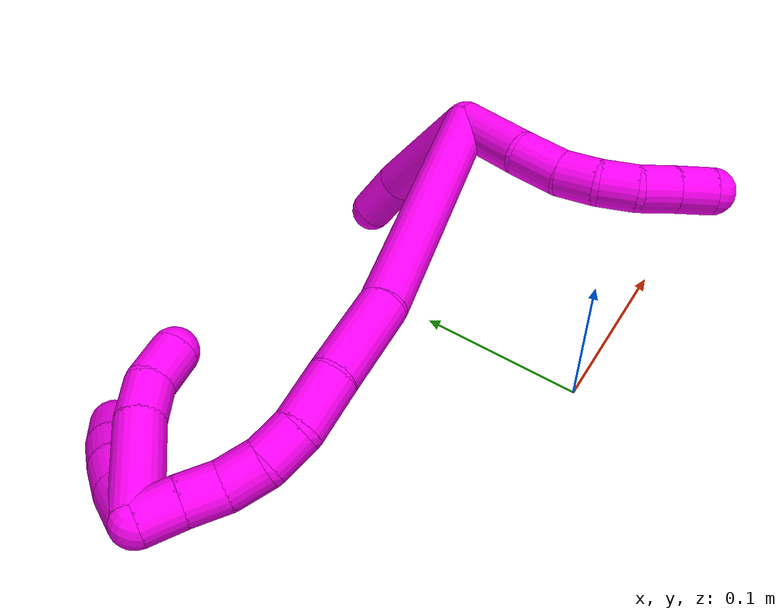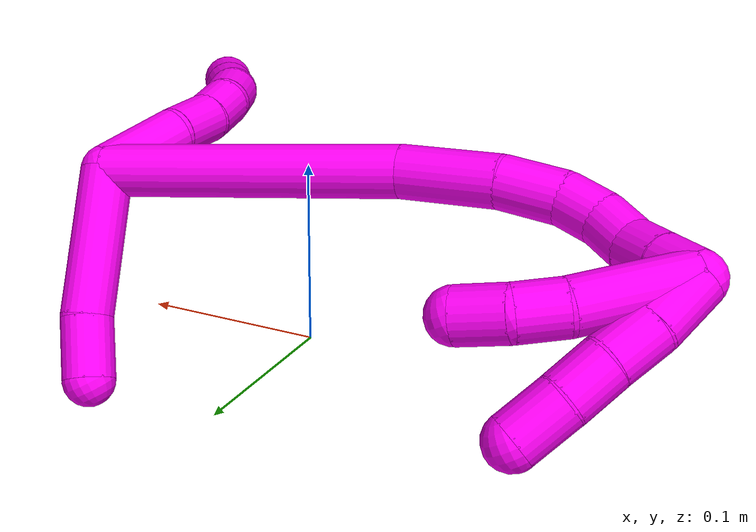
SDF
<sdf version="1.7">
 <world name="default">
  <model name="10">
   <static>0</static>
   <link name="10">
    <collision name="collision-cylinder-e_1_2_8">
     <pose>-0.001905 -0.021486 0.001233 1.51347 -0.088296 -0.083379</pose>
     <geometry><cylinder><radius>0.0125</radius><length>0.043212</length></cylinder></geometry>
     <surface>
      <friction><ode><mu>1.16</mu><mu2>1.16</mu2><slip1>0</slip1><slip2>0</slip2></ode></friction>
      <contact><ode><kp>1e+06</kp><kd>1</kd><max_vel>0</max_vel><min_depth>0.001</min_depth></ode></contact>
     </surface>
    </collision>
    <visual name="visual-cylinder-e_1_2_8">
     <pose>-0.001905 -0.021486 0.001233 1.51347 -0.088296 -0.083379</pose>
     <geometry><cylinder><radius>0.0125</radius><length>0.043212</length></cylinder></geometry>
     <material><ambient>1 0 0.964706 1</ambient></material>
    </visual>
    <collision name="collision-cylinder-e_2_8_9">
     <pose>-0.001815 -0.055603 0.002499 1.56824 0.156663 0.156265</pose>
     <geometry><cylinder><radius>0.0125</radius><length>0.025575</length></cylinder></geometry>
     <surface>
      <friction><ode><mu>1.16</mu><mu2>1.16</mu2><slip1>0</slip1><slip2>0</slip2></ode></friction>
      <contact><ode><kp>1e+06</kp><kd>1</kd><max_vel>0</max_vel><min_depth>0.001</min_depth></ode></contact>
     </surface>
    </collision>
    <visual name="visual-cylinder-e_2_8_9">
     <pose>-0.001815 -0.055603 0.002499 1.56824 0.156663 0.156265</pose>
     <geometry><cylinder><radius>0.0125</radius><length>0.025575</length></cylinder></geometry>
     <material><ambient>1 0 0.964706 1</ambient></material>
    </visual>
    <collision name="collision-cylinder-e_3_9_10">
     <pose>0.002886 -0.078226 0.004364 1.38934 0.260347 0.2173</pose>
     <geometry><cylinder><radius>0.0125</radius><length>0.021026</length></cylinder></geometry>
     <surface>
      <friction><ode><mu>1.16</mu><mu2>1.16</mu2><slip1>0</slip1><slip2>0</slip2></ode></friction>
      <contact><ode><kp>1e+06</kp><kd>1</kd><max_vel>0</max_vel><min_depth>0.001</min_depth></ode></contact>
     </surface>
    </collision>
    <visual name="visual-cylinder-e_3_9_10">
     <pose>0.002886 -0.078226 0.004364 1.38934 0.260347 0.2173</pose>
     <geometry><cylinder><radius>0.0125</radius><length>0.021026</length></cylinder></geometry>
     <material><ambient>1 0 0.964706 1</ambient></material>
    </visual>
    <collision name="collision-cylinder-e_4_10_11">
     <pose>0.010838 -0.096562 0.00808 1.34894 0.550088 0.44383</pose>
     <geometry><cylinder><radius>0.0125</radius><length>0.020067</length></cylinder></geometry>
     <surface>
      <friction><ode><mu>1.16</mu><mu2>1.16</mu2><slip1>0</slip1><slip2>0</slip2></ode></friction>
      <contact><ode><kp>1e+06</kp><kd>1</kd><max_vel>0</max_vel><min_depth>0.001</min_depth></ode></contact>
     </surface>
    </collision>
    <visual name="visual-cylinder-e_4_10_11">
     <pose>0.010838 -0.096562 0.00808 1.34894 0.550088 0.44383</pose>
     <geometry><cylinder><radius>0.0125</radius><length>0.020067</length></cylinder></geometry>
     <material><ambient>1 0 0.964706 1</ambient></material>
    </visual>
    <collision name="collision-cylinder-e_5_11_12">
     <pose>0.023719 -0.111057 0.011997 1.25122 0.867161 0.64551</pose>
     <geometry><cylinder><radius>0.0125</radius><length>0.020028</length></cylinder></geometry>
     <surface>
      <friction><ode><mu>1.16</mu><mu2>1.16</mu2><slip1>0</slip1><slip2>0</slip2></ode></friction>
      <contact><ode><kp>1e+06</kp><kd>1</kd><max_vel>0</max_vel><min_depth>0.001</min_depth></ode></contact>
     </surface>
    </collision>
    <visual name="visual-cylinder-e_5_11_12">
     <pose>0.023719 -0.111057 0.011997 1.25122 0.867161 0.64551</pose>
     <geometry><cylinder><radius>0.0125</radius><length>0.020028</length></cylinder></geometry>
     <material><ambient>1 0 0.964706 1</ambient></material>
    </visual>
    <collision name="collision-cylinder-e_6_12_6">
     <pose>0.038721 -0.123759 0.015962 1.28442 0.823235 0.631246</pose>
     <geometry><cylinder><radius>0.0125</radius><length>0.020092</length></cylinder></geometry>
     <surface>
      <friction><ode><mu>1.16</mu><mu2>1.16</mu2><slip1>0</slip1><slip2>0</slip2></ode></friction>
      <contact><ode><kp>1e+06</kp><kd>1</kd><max_vel>0</max_vel><min_depth>0.001</min_depth></ode></contact>
     </surface>
    </collision>
    <visual name="visual-cylinder-e_6_12_6">
     <pose>0.038721 -0.123759 0.015962 1.28442 0.823235 0.631246</pose>
     <geometry><cylinder><radius>0.0125</radius><length>0.020092</length></cylinder></geometry>
     <material><ambient>1 0 0.964706 1</ambient></material>
    </visual>
    <collision name="collision-cylinder-e_1_2_13">
     <pose>0.004197 0.020351 -0.028628 -2.52361 0.118925 -0.368758</pose>
     <geometry><cylinder><radius>0.0125</radius><length>0.070748</length></cylinder></geometry>
     <surface>
      <friction><ode><mu>1.16</mu><mu2>1.16</mu2><slip1>0</slip1><slip2>0</slip2></ode></friction>
      <contact><ode><kp>1e+06</kp><kd>1</kd><max_vel>0</max_vel><min_depth>0.001</min_depth></ode></contact>
     </surface>
    </collision>
    <visual name="visual-cylinder-e_1_2_13">
     <pose>0.004197 0.020351 -0.028628 -2.52361 0.118925 -0.368758</pose>
     <geometry><cylinder><radius>0.0125</radius><length>0.070748</length></cylinder></geometry>
     <material><ambient>1 0 0.964706 1</ambient></material>
    </visual>
    <collision name="collision-cylinder-e_2_13_5">
     <pose>0.008798 0.047455 -0.070223 -2.66147 0.027631 -0.112767</pose>
     <geometry><cylinder><radius>0.0125</radius><length>0.029252</length></cylinder></geometry>
     <surface>
      <friction><ode><mu>1.16</mu><mu2>1.16</mu2><slip1>0</slip1><slip2>0</slip2></ode></friction>
      <contact><ode><kp>1e+06</kp><kd>1</kd><max_vel>0</max_vel><min_depth>0.001</min_depth></ode></contact>
     </surface>
    </collision>
    <visual name="visual-cylinder-e_2_13_5">
     <pose>0.008798 0.047455 -0.070223 -2.66147 0.027631 -0.112767</pose>
     <geometry><cylinder><radius>0.0125</radius><length>0.029252</length></cylinder></geometry>
     <material><ambient>1 0 0.964706 1</ambient></material>
    </visual>
    <collision name="collision-cylinder-e_1_2_14">
     <pose>-0.05606 -0.033025 -0.029202 2.29483 -0.90442 -1.64583</pose>
     <geometry><cylinder><radius>0.0125</radius><length>0.142635</length></cylinder></geometry>
     <surface>
      <friction><ode><mu>1.16</mu><mu2>1.16</mu2><slip1>0</slip1><slip2>0</slip2></ode></friction>
      <contact><ode><kp>1e+06</kp><kd>1</kd><max_vel>0</max_vel><min_depth>0.001</min_depth></ode></contact>
     </surface>
    </collision>
    <visual name="visual-cylinder-e_1_2_14">
     <pose>-0.05606 -0.033025 -0.029202 2.29483 -0.90442 -1.64583</pose>
     <geometry><cylinder><radius>0.0125</radius><length>0.142635</length></cylinder></geometry>
     <material><ambient>1 0 0.964706 1</ambient></material>
    </visual>
    <collision name="collision-cylinder-e_2_14_15">
     <pose>-0.131743 -0.073185 -0.069311 2.56235 -0.984501 -2.12721</pose>
     <geometry><cylinder><radius>0.0125</radius><length>0.047114</length></cylinder></geometry>
     <surface>
      <friction><ode><mu>1.16</mu><mu2>1.16</mu2><slip1>0</slip1><slip2>0</slip2></ode></friction>
      <contact><ode><kp>1e+06</kp><kd>1</kd><max_vel>0</max_vel><min_depth>0.001</min_depth></ode></contact>
     </surface>
    </collision>
    <visual name="visual-cylinder-e_2_14_15">
     <pose>-0.131743 -0.073185 -0.069311 2.56235 -0.984501 -2.12721</pose>
     <geometry><cylinder><radius>0.0125</radius><length>0.047114</length></cylinder></geometry>
     <material><ambient>1 0 0.964706 1</ambient></material>
    </visual>
    <collision name="collision-cylinder-e_3_15_16">
     <pose>-0.162761 -0.084098 -0.088931 2.73238 -0.876008 -2.30745</pose>
     <geometry><cylinder><radius>0.0125</radius><length>0.029667</length></cylinder></geometry>
     <surface>
      <friction><ode><mu>1.16</mu><mu2>1.16</mu2><slip1>0</slip1><slip2>0</slip2></ode></friction>
      <contact><ode><kp>1e+06</kp><kd>1</kd><max_vel>0</max_vel><min_depth>0.001</min_depth></ode></contact>
     </surface>
    </collision>
    <visual name="visual-cylinder-e_3_15_16">
     <pose>-0.162761 -0.084098 -0.088931 2.73238 -0.876008 -2.30745</pose>
     <geometry><cylinder><radius>0.0125</radius><length>0.029667</length></cylinder></geometry>
     <material><ambient>1 0 0.964706 1</ambient></material>
    </visual>
    <collision name="collision-cylinder-e_4_16_17">
     <pose>-0.181612 -0.087536 -0.104501 -3.09197 -0.826587 3.02855</pose>
     <geometry><cylinder><radius>0.0125</radius><length>0.02027</length></cylinder></geometry>
     <surface>
      <friction><ode><mu>1.16</mu><mu2>1.16</mu2><slip1>0</slip1><slip2>0</slip2></ode></friction>
      <contact><ode><kp>1e+06</kp><kd>1</kd><max_vel>0</max_vel><min_depth>0.001</min_depth></ode></contact>
     </surface>
    </collision>
    <visual name="visual-cylinder-e_4_16_17">
     <pose>-0.181612 -0.087536 -0.104501 -3.09197 -0.826587 3.02855</pose>
     <geometry><cylinder><radius>0.0125</radius><length>0.02027</length></cylinder></geometry>
     <material><ambient>1 0 0.964706 1</ambient></material>
    </visual>
    <collision name="collision-cylinder-e_5_17_18">
     <pose>-0.19604 -0.083918 -0.117975 -2.6816 -0.756747 2.07703</pose>
     <geometry><cylinder><radius>0.0125</radius><length>0.020312</length></cylinder></geometry>
     <surface>
      <friction><ode><mu>1.16</mu><mu2>1.16</mu2><slip1>0</slip1><slip2>0</slip2></ode></friction>
      <contact><ode><kp>1e+06</kp><kd>1</kd><max_vel>0</max_vel><min_depth>0.001</min_depth></ode></contact>
     </surface>
    </collision>
    <visual name="visual-cylinder-e_5_17_18">
     <pose>-0.19604 -0.083918 -0.117975 -2.6816 -0.756747 2.07703</pose>
     <geometry><cylinder><radius>0.0125</radius><length>0.020312</length></cylinder></geometry>
     <material><ambient>1 0 0.964706 1</ambient></material>
    </visual>
    <collision name="collision-cylinder-e_6_18_19">
     <pose>-0.211429 -0.077035 -0.128613 -2.41093 -1.00034 1.9203</pose>
     <geometry><cylinder><radius>0.0125</radius><length>0.02</length></cylinder></geometry>
     <surface>
      <friction><ode><mu>1.16</mu><mu2>1.16</mu2><slip1>0</slip1><slip2>0</slip2></ode></friction>
      <contact><ode><kp>1e+06</kp><kd>1</kd><max_vel>0</max_vel><min_depth>0.001</min_depth></ode></contact>
     </surface>
    </collision>
    <visual name="visual-cylinder-e_6_18_19">
     <pose>-0.211429 -0.077035 -0.128613 -2.41093 -1.00034 1.9203</pose>
     <geometry><cylinder><radius>0.0125</radius><length>0.02</length></cylinder></geometry>
     <material><ambient>1 0 0.964706 1</ambient></material>
    </visual>
    <collision name="collision-cylinder-e_7_19_1">
     <pose>-0.228263 -0.070295 -0.137032 -2.52193 -1.0003 2.08176</pose>
     <geometry><cylinder><radius>0.0125</radius><length>0.020002</length></cylinder></geometry>
     <surface>
      <friction><ode><mu>1.16</mu><mu2>1.16</mu2><slip1>0</slip1><slip2>0</slip2></ode></friction>
      <contact><ode><kp>1e+06</kp><kd>1</kd><max_vel>0</max_vel><min_depth>0.001</min_depth></ode></contact>
     </surface>
    </collision>
    <visual name="visual-cylinder-e_7_19_1">
     <pose>-0.228263 -0.070295 -0.137032 -2.52193 -1.0003 2.08176</pose>
     <geometry><cylinder><radius>0.0125</radius><length>0.020002</length></cylinder></geometry>
     <material><ambient>1 0 0.964706 1</ambient></material>
    </visual>
    <collision name="collision-cylinder-e_1_1_20">
     <pose>-0.222063 -0.045248 -0.134521 -1.26539 0.566661 -0.420675</pose>
     <geometry><cylinder><radius>0.0125</radius><length>0.054459</length></cylinder></geometry>
     <surface>
      <friction><ode><mu>1.16</mu><mu2>1.16</mu2><slip1>0</slip1><slip2>0</slip2></ode></friction>
      <contact><ode><kp>1e+06</kp><kd>1</kd><max_vel>0</max_vel><min_depth>0.001</min_depth></ode></contact>
     </surface>
    </collision>
    <visual name="visual-cylinder-e_1_1_20">
     <pose>-0.222063 -0.045248 -0.134521 -1.26539 0.566661 -0.420675</pose>
     <geometry><cylinder><radius>0.0125</radius><length>0.054459</length></cylinder></geometry>
     <material><ambient>1 0 0.964706 1</ambient></material>
    </visual>
    <collision name="collision-cylinder-e_2_20_21">
     <pose>-0.200303 -0.015786 -0.123956 -1.11981 0.705196 -0.453379</pose>
     <geometry><cylinder><radius>0.0125</radius><length>0.022039</length></cylinder></geometry>
     <surface>
      <friction><ode><mu>1.16</mu><mu2>1.16</mu2><slip1>0</slip1><slip2>0</slip2></ode></friction>
      <contact><ode><kp>1e+06</kp><kd>1</kd><max_vel>0</max_vel><min_depth>0.001</min_depth></ode></contact>
     </surface>
    </collision>
    <visual name="visual-cylinder-e_2_20_21">
     <pose>-0.200303 -0.015786 -0.123956 -1.11981 0.705196 -0.453379</pose>
     <geometry><cylinder><radius>0.0125</radius><length>0.022039</length></cylinder></geometry>
     <material><ambient>1 0 0.964706 1</ambient></material>
    </visual>
    <collision name="collision-cylinder-e_3_21_4">
     <pose>-0.183226 -0.003311 -0.116403 -0.901294 1.00724 -0.521096</pose>
     <geometry><cylinder><radius>0.0125</radius><length>0.023502</length></cylinder></geometry>
     <surface>
      <friction><ode><mu>1.16</mu><mu2>1.16</mu2><slip1>0</slip1><slip2>0</slip2></ode></friction>
      <contact><ode><kp>1e+06</kp><kd>1</kd><max_vel>0</max_vel><min_depth>0.001</min_depth></ode></contact>
     </surface>
    </collision>
    <visual name="visual-cylinder-e_3_21_4">
     <pose>-0.183226 -0.003311 -0.116403 -0.901294 1.00724 -0.521096</pose>
     <geometry><cylinder><radius>0.0125</radius><length>0.023502</length></cylinder></geometry>
     <material><ambient>1 0 0.964706 1</ambient></material>
    </visual>
    <collision name="collision-cylinder-e_1_1_22">
     <pose>-0.231397 -0.054665 -0.145089 -1.85582 0.385517 -0.509816</pose>
     <geometry><cylinder><radius>0.0125</radius><length>0.028099</length></cylinder></geometry>
     <surface>
      <friction><ode><mu>1.16</mu><mu2>1.16</mu2><slip1>0</slip1><slip2>0</slip2></ode></friction>
      <contact><ode><kp>1e+06</kp><kd>1</kd><max_vel>0</max_vel><min_depth>0.001</min_depth></ode></contact>
     </surface>
    </collision>
    <visual name="visual-cylinder-e_1_1_22">
     <pose>-0.231397 -0.054665 -0.145089 -1.85582 0.385517 -0.509816</pose>
     <geometry><cylinder><radius>0.0125</radius><length>0.028099</length></cylinder></geometry>
     <material><ambient>1 0 0.964706 1</ambient></material>
    </visual>
    <collision name="collision-cylinder-e_2_22_23">
     <pose>-0.220758 -0.031774 -0.150505 -1.7381 0.469935 -0.55196</pose>
     <geometry><cylinder><radius>0.0125</radius><length>0.023653</length></cylinder></geometry>
     <surface>
      <friction><ode><mu>1.16</mu><mu2>1.16</mu2><slip1>0</slip1><slip2>0</slip2></ode></friction>
      <contact><ode><kp>1e+06</kp><kd>1</kd><max_vel>0</max_vel><min_depth>0.001</min_depth></ode></contact>
     </surface>
    </collision>
    <visual name="visual-cylinder-e_2_22_23">
     <pose>-0.220758 -0.031774 -0.150505 -1.7381 0.469935 -0.55196</pose>
     <geometry><cylinder><radius>0.0125</radius><length>0.023653</length></cylinder></geometry>
     <material><ambient>1 0 0.964706 1</ambient></material>
    </visual>
    <collision name="collision-cylinder-e_3_23_24">
     <pose>-0.209456 -0.011952 -0.154731 -1.82712 0.547987 -0.698571</pose>
     <geometry><cylinder><radius>0.0125</radius><length>0.02283</length></cylinder></geometry>
     <surface>
      <friction><ode><mu>1.16</mu><mu2>1.16</mu2><slip1>0</slip1><slip2>0</slip2></ode></friction>
      <contact><ode><kp>1e+06</kp><kd>1</kd><max_vel>0</max_vel><min_depth>0.001</min_depth></ode></contact>
     </surface>
    </collision>
    <visual name="visual-cylinder-e_3_23_24">
     <pose>-0.209456 -0.011952 -0.154731 -1.82712 0.547987 -0.698571</pose>
     <geometry><cylinder><radius>0.0125</radius><length>0.02283</length></cylinder></geometry>
     <material><ambient>1 0 0.964706 1</ambient></material>
    </visual>
    <collision name="collision-cylinder-e_4_24_3">
     <pose>-0.195747 0.007145 -0.15998 -1.85047 0.656996 -0.849892</pose>
     <geometry><cylinder><radius>0.0125</radius><length>0.025418</length></cylinder></geometry>
     <surface>
      <friction><ode><mu>1.16</mu><mu2>1.16</mu2><slip1>0</slip1><slip2>0</slip2></ode></friction>
      <contact><ode><kp>1e+06</kp><kd>1</kd><max_vel>0</max_vel><min_depth>0.001</min_depth></ode></contact>
     </surface>
    </collision>
    <visual name="visual-cylinder-e_4_24_3">
     <pose>-0.195747 0.007145 -0.15998 -1.85047 0.656996 -0.849892</pose>
     <geometry><cylinder><radius>0.0125</radius><length>0.025418</length></cylinder></geometry>
     <material><ambient>1 0 0.964706 1</ambient></material>
    </visual>
    <collision name="collision-sphere-3">
     <pose>-0.187986 0.016818 -0.162758 0 -0 0</pose>
     <geometry><sphere><radius>0.0125</radius></sphere></geometry>
     <surface>
      <friction><ode><mu>1.16</mu><mu2>1.16</mu2><slip1>0</slip1><slip2>0</slip2></ode></friction>
      <contact><ode><kp>1e+06</kp><kd>1</kd><max_vel>0</max_vel><min_depth>0.001</min_depth></ode></contact>
     </surface>
    </collision>
    <visual name="visual-sphere-3">
     <pose>-0.187986 0.016818 -0.162758 0 -0 0</pose>
     <geometry><sphere><radius>0.0125</radius></sphere></geometry>
     <material><ambient>1 0 0.964706 1</ambient></material>
    </visual>
    <collision name="collision-sphere-24">
     <pose>-0.203509 -0.002527 -0.157202 0 -0 0</pose>
     <geometry><sphere><radius>0.0125</radius></sphere></geometry>
     <surface>
      <friction><ode><mu>1.16</mu><mu2>1.16</mu2><slip1>0</slip1><slip2>0</slip2></ode></friction>
      <contact><ode><kp>1e+06</kp><kd>1</kd><max_vel>0</max_vel><min_depth>0.001</min_depth></ode></contact>
     </surface>
    </collision>
    <visual name="visual-sphere-24">
     <pose>-0.203509 -0.002527 -0.157202 0 -0 0</pose>
     <geometry><sphere><radius>0.0125</radius></sphere></geometry>
     <material><ambient>1 0 0.964706 1</ambient></material>
    </visual>
    <collision name="collision-sphere-23">
     <pose>-0.215403 -0.021377 -0.152261 0 -0 0</pose>
     <geometry><sphere><radius>0.0125</radius></sphere></geometry>
     <surface>
      <friction><ode><mu>1.16</mu><mu2>1.16</mu2><slip1>0</slip1><slip2>0</slip2></ode></friction>
      <contact><ode><kp>1e+06</kp><kd>1</kd><max_vel>0</max_vel><min_depth>0.001</min_depth></ode></contact>
     </surface>
    </collision>
    <visual name="visual-sphere-23">
     <pose>-0.215403 -0.021377 -0.152261 0 -0 0</pose>
     <geometry><sphere><radius>0.0125</radius></sphere></geometry>
     <material><ambient>1 0 0.964706 1</ambient></material>
    </visual>
    <collision name="collision-sphere-22">
     <pose>-0.226114 -0.042172 -0.148749 0 -0 0</pose>
     <geometry><sphere><radius>0.0125</radius></sphere></geometry>
     <surface>
      <friction><ode><mu>1.16</mu><mu2>1.16</mu2><slip1>0</slip1><slip2>0</slip2></ode></friction>
      <contact><ode><kp>1e+06</kp><kd>1</kd><max_vel>0</max_vel><min_depth>0.001</min_depth></ode></contact>
     </surface>
    </collision>
    <visual name="visual-sphere-22">
     <pose>-0.226114 -0.042172 -0.148749 0 -0 0</pose>
     <geometry><sphere><radius>0.0125</radius></sphere></geometry>
     <material><ambient>1 0 0.964706 1</ambient></material>
    </visual>
    <collision name="collision-sphere-4">
     <pose>-0.173293 0.001611 -0.112507 0 -0 0</pose>
     <geometry><sphere><radius>0.0125</radius></sphere></geometry>
     <surface>
      <friction><ode><mu>1.16</mu><mu2>1.16</mu2><slip1>0</slip1><slip2>0</slip2></ode></friction>
      <contact><ode><kp>1e+06</kp><kd>1</kd><max_vel>0</max_vel><min_depth>0.001</min_depth></ode></contact>
     </surface>
    </collision>
    <visual name="visual-sphere-4">
     <pose>-0.173293 0.001611 -0.112507 0 -0 0</pose>
     <geometry><sphere><radius>0.0125</radius></sphere></geometry>
     <material><ambient>1 0 0.964706 1</ambient></material>
    </visual>
    <collision name="collision-sphere-21">
     <pose>-0.19316 -0.008233 -0.120298 0 -0 0</pose>
     <geometry><sphere><radius>0.0125</radius></sphere></geometry>
     <surface>
      <friction><ode><mu>1.16</mu><mu2>1.16</mu2><slip1>0</slip1><slip2>0</slip2></ode></friction>
      <contact><ode><kp>1e+06</kp><kd>1</kd><max_vel>0</max_vel><min_depth>0.001</min_depth></ode></contact>
     </surface>
    </collision>
    <visual name="visual-sphere-21">
     <pose>-0.19316 -0.008233 -0.120298 0 -0 0</pose>
     <geometry><sphere><radius>0.0125</radius></sphere></geometry>
     <material><ambient>1 0 0.964706 1</ambient></material>
    </visual>
    <collision name="collision-sphere-20">
     <pose>-0.207446 -0.023338 -0.127613 0 -0 0</pose>
     <geometry><sphere><radius>0.0125</radius></sphere></geometry>
     <surface>
      <friction><ode><mu>1.16</mu><mu2>1.16</mu2><slip1>0</slip1><slip2>0</slip2></ode></friction>
      <contact><ode><kp>1e+06</kp><kd>1</kd><max_vel>0</max_vel><min_depth>0.001</min_depth></ode></contact>
     </surface>
    </collision>
    <visual name="visual-sphere-20">
     <pose>-0.207446 -0.023338 -0.127613 0 -0 0</pose>
     <geometry><sphere><radius>0.0125</radius></sphere></geometry>
     <material><ambient>1 0 0.964706 1</ambient></material>
    </visual>
    <collision name="collision-sphere-12">
     <pose>0.031354 -0.117208 0.014033 0 -0 0</pose>
     <geometry><sphere><radius>0.0125</radius></sphere></geometry>
     <surface>
      <friction><ode><mu>1.16</mu><mu2>1.16</mu2><slip1>0</slip1><slip2>0</slip2></ode></friction>
      <contact><ode><kp>1e+06</kp><kd>1</kd><max_vel>0</max_vel><min_depth>0.001</min_depth></ode></contact>
     </surface>
    </collision>
    <visual name="visual-sphere-12">
     <pose>0.031354 -0.117208 0.014033 0 -0 0</pose>
     <geometry><sphere><radius>0.0125</radius></sphere></geometry>
     <material><ambient>1 0 0.964706 1</ambient></material>
    </visual>
    <collision name="collision-sphere-11">
     <pose>0.016083 -0.104906 0.009962 0 -0 0</pose>
     <geometry><sphere><radius>0.0125</radius></sphere></geometry>
     <surface>
      <friction><ode><mu>1.16</mu><mu2>1.16</mu2><slip1>0</slip1><slip2>0</slip2></ode></friction>
      <contact><ode><kp>1e+06</kp><kd>1</kd><max_vel>0</max_vel><min_depth>0.001</min_depth></ode></contact>
     </surface>
    </collision>
    <visual name="visual-sphere-11">
     <pose>0.016083 -0.104906 0.009962 0 -0 0</pose>
     <geometry><sphere><radius>0.0125</radius></sphere></geometry>
     <material><ambient>1 0 0.964706 1</ambient></material>
    </visual>
    <collision name="collision-sphere-10">
     <pose>0.005592 -0.088218 0.006197 0 -0 0</pose>
     <geometry><sphere><radius>0.0125</radius></sphere></geometry>
     <surface>
      <friction><ode><mu>1.16</mu><mu2>1.16</mu2><slip1>0</slip1><slip2>0</slip2></ode></friction>
      <contact><ode><kp>1e+06</kp><kd>1</kd><max_vel>0</max_vel><min_depth>0.001</min_depth></ode></contact>
     </surface>
    </collision>
    <visual name="visual-sphere-10">
     <pose>0.005592 -0.088218 0.006197 0 -0 0</pose>
     <geometry><sphere><radius>0.0125</radius></sphere></geometry>
     <material><ambient>1 0 0.964706 1</ambient></material>
    </visual>
    <collision name="collision-sphere-9">
     <pose>0.00018 -0.068234 0.002531 0 -0 0</pose>
     <geometry><sphere><radius>0.0125</radius></sphere></geometry>
     <surface>
      <friction><ode><mu>1.16</mu><mu2>1.16</mu2><slip1>0</slip1><slip2>0</slip2></ode></friction>
      <contact><ode><kp>1e+06</kp><kd>1</kd><max_vel>0</max_vel><min_depth>0.001</min_depth></ode></contact>
     </surface>
    </collision>
    <visual name="visual-sphere-9">
     <pose>0.00018 -0.068234 0.002531 0 -0 0</pose>
     <geometry><sphere><radius>0.0125</radius></sphere></geometry>
     <material><ambient>1 0 0.964706 1</ambient></material>
    </visual>
    <collision name="collision-sphere-2">
     <geometry><sphere><radius>0.0125</radius></sphere></geometry>
     <surface>
      <friction><ode><mu>1.16</mu><mu2>1.16</mu2><slip1>0</slip1><slip2>0</slip2></ode></friction>
      <contact><ode><kp>1e+06</kp><kd>1</kd><max_vel>0</max_vel><min_depth>0.001</min_depth></ode></contact>
     </surface>
    </collision>
    <visual name="visual-sphere-2">
     <geometry><sphere><radius>0.0125</radius></sphere></geometry>
     <material><ambient>1 0 0.964706 1</ambient></material>
    </visual>
    <collision name="collision-sphere-19">
     <pose>-0.219846 -0.073432 -0.132635 0 -0 0</pose>
     <geometry><sphere><radius>0.0125</radius></sphere></geometry>
     <surface>
      <friction><ode><mu>1.16</mu><mu2>1.16</mu2><slip1>0</slip1><slip2>0</slip2></ode></friction>
      <contact><ode><kp>1e+06</kp><kd>1</kd><max_vel>0</max_vel><min_depth>0.001</min_depth></ode></contact>
     </surface>
    </collision>
    <visual name="visual-sphere-19">
     <pose>-0.219846 -0.073432 -0.132635 0 -0 0</pose>
     <geometry><sphere><radius>0.0125</radius></sphere></geometry>
     <material><ambient>1 0 0.964706 1</ambient></material>
    </visual>
    <collision name="collision-sphere-8">
     <pose>-0.00381 -0.042972 0.002466 0 -0 0</pose>
     <geometry><sphere><radius>0.0125</radius></sphere></geometry>
     <surface>
      <friction><ode><mu>1.16</mu><mu2>1.16</mu2><slip1>0</slip1><slip2>0</slip2></ode></friction>
      <contact><ode><kp>1e+06</kp><kd>1</kd><max_vel>0</max_vel><min_depth>0.001</min_depth></ode></contact>
     </surface>
    </collision>
    <visual name="visual-sphere-8">
     <pose>-0.00381 -0.042972 0.002466 0 -0 0</pose>
     <geometry><sphere><radius>0.0125</radius></sphere></geometry>
     <material><ambient>1 0 0.964706 1</ambient></material>
    </visual>
    <collision name="collision-sphere-6">
     <pose>0.046089 -0.130311 0.017891 0 -0 0</pose>
     <geometry><sphere><radius>0.0125</radius></sphere></geometry>
     <surface>
      <friction><ode><mu>1.16</mu><mu2>1.16</mu2><slip1>0</slip1><slip2>0</slip2></ode></friction>
      <contact><ode><kp>1e+06</kp><kd>1</kd><max_vel>0</max_vel><min_depth>0.001</min_depth></ode></contact>
     </surface>
    </collision>
    <visual name="visual-sphere-6">
     <pose>0.046089 -0.130311 0.017891 0 -0 0</pose>
     <geometry><sphere><radius>0.0125</radius></sphere></geometry>
     <material><ambient>1 0 0.964706 1</ambient></material>
    </visual>
    <collision name="collision-sphere-13">
     <pose>0.008394 0.040702 -0.057256 0 -0 0</pose>
     <geometry><sphere><radius>0.0125</radius></sphere></geometry>
     <surface>
      <friction><ode><mu>1.16</mu><mu2>1.16</mu2><slip1>0</slip1><slip2>0</slip2></ode></friction>
      <contact><ode><kp>1e+06</kp><kd>1</kd><max_vel>0</max_vel><min_depth>0.001</min_depth></ode></contact>
     </surface>
    </collision>
    <visual name="visual-sphere-13">
     <pose>0.008394 0.040702 -0.057256 0 -0 0</pose>
     <geometry><sphere><radius>0.0125</radius></sphere></geometry>
     <material><ambient>1 0 0.964706 1</ambient></material>
    </visual>
    <collision name="collision-sphere-5">
     <pose>0.009202 0.054208 -0.08319 0 -0 0</pose>
     <geometry><sphere><radius>0.0125</radius></sphere></geometry>
     <surface>
      <friction><ode><mu>1.16</mu><mu2>1.16</mu2><slip1>0</slip1><slip2>0</slip2></ode></friction>
      <contact><ode><kp>1e+06</kp><kd>1</kd><max_vel>0</max_vel><min_depth>0.001</min_depth></ode></contact>
     </surface>
    </collision>
    <visual name="visual-sphere-5">
     <pose>0.009202 0.054208 -0.08319 0 -0 0</pose>
     <geometry><sphere><radius>0.0125</radius></sphere></geometry>
     <material><ambient>1 0 0.964706 1</ambient></material>
    </visual>
    <collision name="collision-sphere-14">
     <pose>-0.11212 -0.066051 -0.058404 0 -0 0</pose>
     <geometry><sphere><radius>0.0125</radius></sphere></geometry>
     <surface>
      <friction><ode><mu>1.16</mu><mu2>1.16</mu2><slip1>0</slip1><slip2>0</slip2></ode></friction>
      <contact><ode><kp>1e+06</kp><kd>1</kd><max_vel>0</max_vel><min_depth>0.001</min_depth></ode></contact>
     </surface>
    </collision>
    <visual name="visual-sphere-14">
     <pose>-0.11212 -0.066051 -0.058404 0 -0 0</pose>
     <geometry><sphere><radius>0.0125</radius></sphere></geometry>
     <material><ambient>1 0 0.964706 1</ambient></material>
    </visual>
    <collision name="collision-sphere-15">
     <pose>-0.151366 -0.08032 -0.080219 0 -0 0</pose>
     <geometry><sphere><radius>0.0125</radius></sphere></geometry>
     <surface>
      <friction><ode><mu>1.16</mu><mu2>1.16</mu2><slip1>0</slip1><slip2>0</slip2></ode></friction>
      <contact><ode><kp>1e+06</kp><kd>1</kd><max_vel>0</max_vel><min_depth>0.001</min_depth></ode></contact>
     </surface>
    </collision>
    <visual name="visual-sphere-15">
     <pose>-0.151366 -0.08032 -0.080219 0 -0 0</pose>
     <geometry><sphere><radius>0.0125</radius></sphere></geometry>
     <material><ambient>1 0 0.964706 1</ambient></material>
    </visual>
    <collision name="collision-sphere-16">
     <pose>-0.174156 -0.087877 -0.097644 0 -0 0</pose>
     <geometry><sphere><radius>0.0125</radius></sphere></geometry>
     <surface>
      <friction><ode><mu>1.16</mu><mu2>1.16</mu2><slip1>0</slip1><slip2>0</slip2></ode></friction>
      <contact><ode><kp>1e+06</kp><kd>1</kd><max_vel>0</max_vel><min_depth>0.001</min_depth></ode></contact>
     </surface>
    </collision>
    <visual name="visual-sphere-16">
     <pose>-0.174156 -0.087877 -0.097644 0 -0 0</pose>
     <geometry><sphere><radius>0.0125</radius></sphere></geometry>
     <material><ambient>1 0 0.964706 1</ambient></material>
    </visual>
    <collision name="collision-sphere-17">
     <pose>-0.189067 -0.087196 -0.111358 0 -0 0</pose>
     <geometry><sphere><radius>0.0125</radius></sphere></geometry>
     <surface>
      <friction><ode><mu>1.16</mu><mu2>1.16</mu2><slip1>0</slip1><slip2>0</slip2></ode></friction>
      <contact><ode><kp>1e+06</kp><kd>1</kd><max_vel>0</max_vel><min_depth>0.001</min_depth></ode></contact>
     </surface>
    </collision>
    <visual name="visual-sphere-17">
     <pose>-0.189067 -0.087196 -0.111358 0 -0 0</pose>
     <geometry><sphere><radius>0.0125</radius></sphere></geometry>
     <material><ambient>1 0 0.964706 1</ambient></material>
    </visual>
    <collision name="collision-sphere-18">
     <pose>-0.203013 -0.080639 -0.124591 0 -0 0</pose>
     <geometry><sphere><radius>0.0125</radius></sphere></geometry>
     <surface>
      <friction><ode><mu>1.16</mu><mu2>1.16</mu2><slip1>0</slip1><slip2>0</slip2></ode></friction>
      <contact><ode><kp>1e+06</kp><kd>1</kd><max_vel>0</max_vel><min_depth>0.001</min_depth></ode></contact>
     </surface>
    </collision>
    <visual name="visual-sphere-18">
     <pose>-0.203013 -0.080639 -0.124591 0 -0 0</pose>
     <geometry><sphere><radius>0.0125</radius></sphere></geometry>
     <material><ambient>1 0 0.964706 1</ambient></material>
    </visual>
    <collision name="collision-sphere-1">
     <pose>-0.23668 -0.067158 -0.141428 0 -0 0</pose>
     <geometry><sphere><radius>0.0125</radius></sphere></geometry>
     <surface>
      <friction><ode><mu>1.16</mu><mu2>1.16</mu2><slip1>0</slip1><slip2>0</slip2></ode></friction>
      <contact><ode><kp>1e+06</kp><kd>1</kd><max_vel>0</max_vel><min_depth>0.001</min_depth></ode></contact>
     </surface>
    </collision>
    <visual name="visual-sphere-1">
     <pose>-0.23668 -0.067158 -0.141428 0 -0 0</pose>
     <geometry><sphere><radius>0.0125</radius></sphere></geometry>
     <material><ambient>1 0 0.964706 1</ambient></material>
    </visual>
    <inertial>
     <pose>-0.101103 -0.040219 -0.068098 0 -0 0</pose>
     <mass>0.75</mass>
     <inertia>
      <ixx>-0.000133</ixx>
      <ixy>0</ixy>
      <ixz>0</ixz>
      <iyy>-1.5e-05</iyy>
      <iyz>0</iyz>
      <izz>0.000262</izz>
     </inertia>
    </inertial>
   </link>
   <pose>0.049616 0.10787 0.123118 -0.125889 0.504337 -0.297063</pose>
  </model>
 </world>
</sdf>
